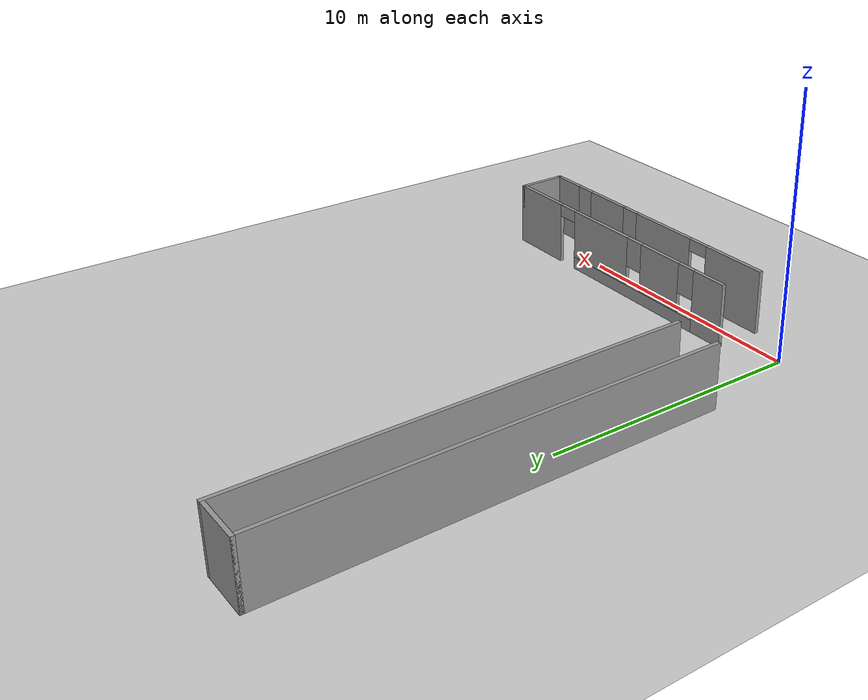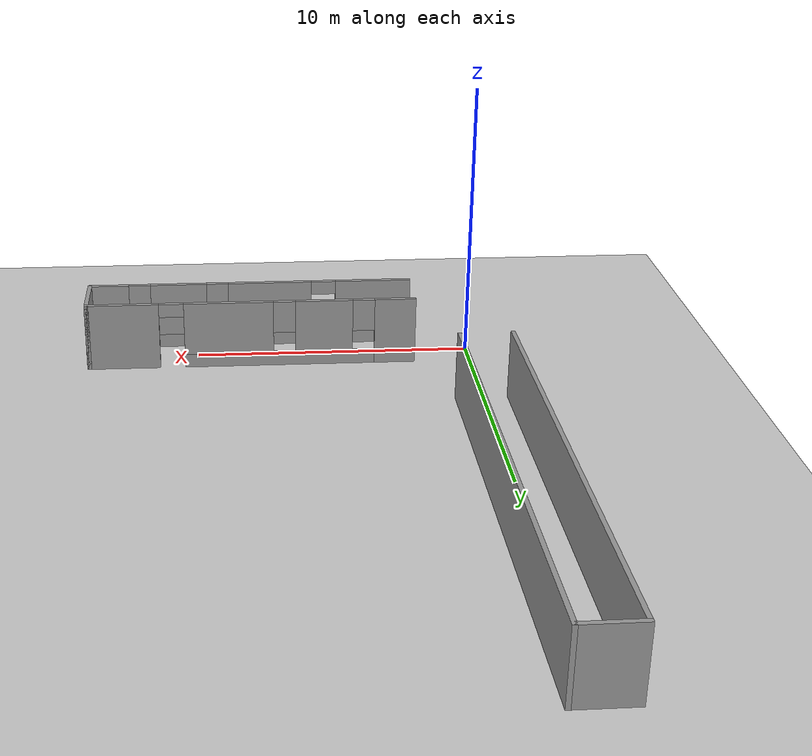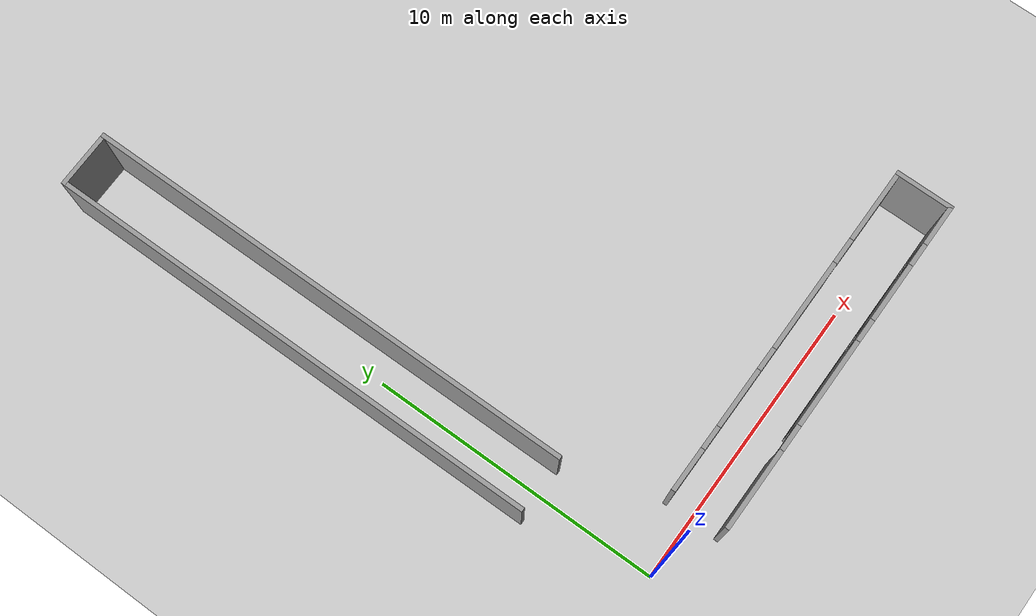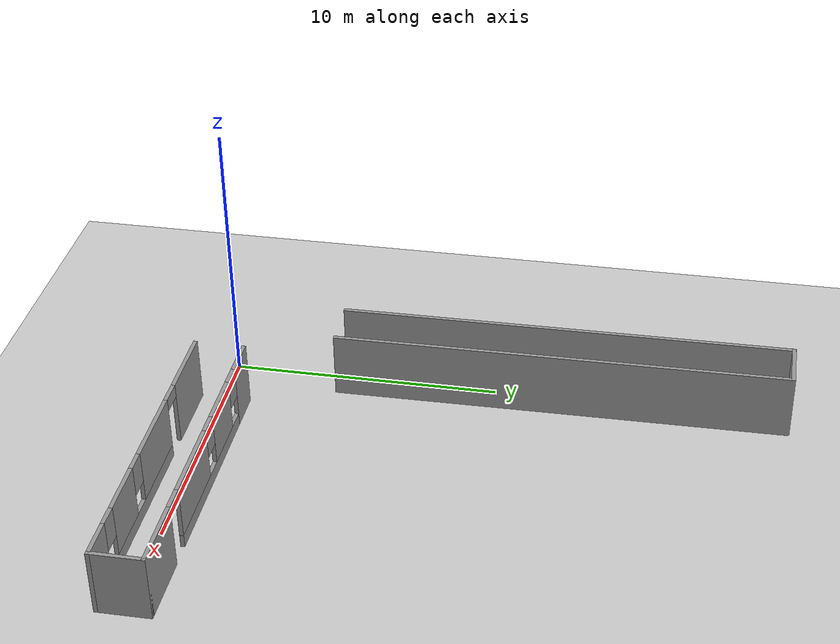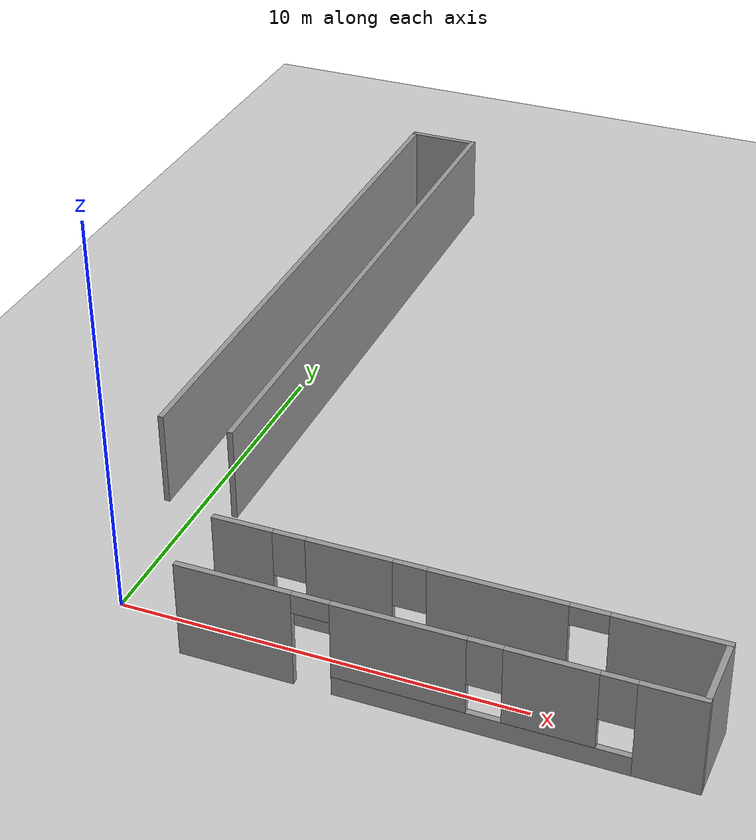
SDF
<sdf version="1.6">
 <world name="default">
  <light name="sun" type="directional">
   <pose>0 0 10 0 -0 0</pose>
   <diffuse>0.8 0.8 0.8 1</diffuse>
   <specular>0.2 0.2 0.2 1</specular>
   <attenuation>
    <range>1000</range>
    <constant>0.9</constant>
    <linear>0.01</linear>
    <quadratic>0.001</quadratic>
   </attenuation>
   <direction>-0.5 0.1 -0.9</direction>
  </light>
  <model name="ground_plane">
   <static>1</static>
   <link name="link">
    <collision name="collision">
     <geometry><plane><normal>0 0 1</normal><size>100 100</size></plane></geometry>
     <surface>
      <contact><collide_bitmask>65535</collide_bitmask></contact>
      <friction><ode><mu>100</mu><mu2>50</mu2></ode></friction>
     </surface>
    </collision>
    <visual name="visual">
     <cast_shadows>0</cast_shadows>
     <geometry><plane><normal>0 0 1</normal><size>100 100</size></plane></geometry>
     <material>
      <script><uri>file://media/materials/scripts/gazebo.material</uri><name>Gazebo/Grey</name></script>
     </material>
    </visual>
   </link>
  </model>
  <gravity>0 0 -9.8</gravity>
  <magnetic_field>6e-06 2.3e-05 -4.2e-05</magnetic_field>
  <atmosphere type="adiabatic"/>
  <physics name="default_physics" default="0" type="ode">
   <max_step_size>0.001</max_step_size>
   <real_time_factor>1</real_time_factor>
   <real_time_update_rate>1000</real_time_update_rate>
  </physics>
  <scene><ambient>0.4 0.4 0.4 1</ambient><background>0.7 0.7 0.7 1</background><shadows>1</shadows></scene>
  <spherical_coordinates>
   <surface_model>EARTH_WGS84</surface_model>
   <latitude_deg>0</latitude_deg>
   <longitude_deg>0</longitude_deg>
   <elevation>0</elevation>
   <heading_deg>0</heading_deg>
  </spherical_coordinates>
  <model name="corridor_window_door">
   <pose>8.04438 -0.018289 0 0 -0 0</pose>
   <link name="Wall_0">
    <pose>-0 0.925 0 0 -0 0</pose>
    <visual name="Wall_0_Visual_0">
     <pose>-5.2475 0 1.25 0 -0 0</pose>
     <geometry><box><size>1.505 0.15 2.5</size></box></geometry>
     <material>
      <script><uri>file://media/materials/scripts/gazebo.material</uri><name>Gazebo/Grey</name></script>
      <ambient>1 1 1 1</ambient>
     </material>
     <meta><layer>0</layer></meta>
    </visual>
    <collision name="Wall_0_Collision_0">
     <geometry><box><size>1.505 0.15 2.5</size></box></geometry>
     <pose>-5.2475 0 1.25 0 -0 0</pose>
    </collision>
    <visual name="Wall_0_Visual_1">
     <pose>4.6675 0 1.25 0 -0 0</pose>
     <geometry><box><size>2.665 0.15 2.5</size></box></geometry>
     <material>
      <script><uri>file://media/materials/scripts/gazebo.material</uri><name>Gazebo/Grey</name></script>
      <ambient>1 1 1 1</ambient>
     </material>
     <meta><layer>0</layer></meta>
    </visual>
    <collision name="Wall_0_Collision_1">
     <geometry><box><size>2.665 0.15 2.5</size></box></geometry>
     <pose>4.6675 0 1.25 0 -0 0</pose>
    </collision>
    <visual name="Wall_0_Visual_2">
     <pose>-1.03 0 0.25 0 -0 0</pose>
     <geometry><box><size>6.93 0.15 0.5</size></box></geometry>
     <material>
      <script><uri>file://media/materials/scripts/gazebo.material</uri><name>Gazebo/Grey</name></script>
      <ambient>1 1 1 1</ambient>
     </material>
     <meta><layer>0</layer></meta>
    </visual>
    <collision name="Wall_0_Collision_2">
     <geometry><box><size>6.93 0.15 0.5</size></box></geometry>
     <pose>-1.03 0 0.25 0 -0 0</pose>
    </collision>
    <visual name="Wall_0_Visual_3">
     <pose>-2.65 0 1.5 0 -0 0</pose>
     <geometry><box><size>2.09 0.15 2</size></box></geometry>
     <material>
      <script><uri>file://media/materials/scripts/gazebo.material</uri><name>Gazebo/Grey</name></script>
      <ambient>1 1 1 1</ambient>
     </material>
     <meta><layer>0</layer></meta>
    </visual>
    <collision name="Wall_0_Collision_3">
     <geometry><box><size>2.09 0.15 2</size></box></geometry>
     <pose>-2.65 0 1.5 0 -0 0</pose>
    </collision>
    <visual name="Wall_0_Visual_4">
     <pose>0.815 0 1.5 0 -0 0</pose>
     <geometry><box><size>3.24 0.15 2</size></box></geometry>
     <material>
      <script><uri>file://media/materials/scripts/gazebo.material</uri><name>Gazebo/Grey</name></script>
      <ambient>1 1 1 1</ambient>
     </material>
     <meta><layer>0</layer></meta>
    </visual>
    <collision name="Wall_0_Collision_4">
     <geometry><box><size>3.24 0.15 2</size></box></geometry>
     <pose>0.815 0 1.5 0 -0 0</pose>
    </collision>
    <visual name="Wall_0_Visual_5">
     <pose>-4.095 0 1.9 0 -0 0</pose>
     <geometry><box><size>0.8 0.15 1.2</size></box></geometry>
     <material>
      <script><uri>file://media/materials/scripts/gazebo.material</uri><name>Gazebo/Grey</name></script>
      <ambient>1 1 1 1</ambient>
     </material>
     <meta><layer>0</layer></meta>
    </visual>
    <collision name="Wall_0_Collision_5">
     <geometry><box><size>0.8 0.15 1.2</size></box></geometry>
     <pose>-4.095 0 1.9 0 -0 0</pose>
    </collision>
    <visual name="Wall_0_Visual_6">
     <pose>-1.205 0 1.9 0 -0 0</pose>
     <geometry><box><size>0.8 0.15 1.2</size></box></geometry>
     <material>
      <script><uri>file://media/materials/scripts/gazebo.material</uri><name>Gazebo/Grey</name></script>
      <ambient>1 1 1 1</ambient>
     </material>
     <meta><layer>0</layer></meta>
    </visual>
    <collision name="Wall_0_Collision_6">
     <geometry><box><size>0.8 0.15 1.2</size></box></geometry>
     <pose>-1.205 0 1.9 0 -0 0</pose>
    </collision>
    <visual name="Wall_0_Visual_7">
     <pose>2.885 0 2.25 0 -0 0</pose>
     <geometry><box><size>0.9 0.15 0.5</size></box></geometry>
     <material>
      <script><uri>file://media/materials/scripts/gazebo.material</uri><name>Gazebo/Grey</name></script>
      <ambient>1 1 1 1</ambient>
     </material>
     <meta><layer>0</layer></meta>
    </visual>
    <collision name="Wall_0_Collision_7">
     <geometry><box><size>0.9 0.15 0.5</size></box></geometry>
     <pose>2.885 0 2.25 0 -0 0</pose>
    </collision>
   </link>
   <link name="Wall_1">
    <collision name="Wall_1_Collision">
     <geometry><box><size>2 0.15 2.5</size></box></geometry>
     <pose>0 0 1.25 0 -0 0</pose>
    </collision>
    <visual name="Wall_1_Visual">
     <pose>0 0 1.25 0 -0 0</pose>
     <geometry><box><size>2 0.15 2.5</size></box></geometry>
     <material>
      <script><uri>file://media/materials/scripts/gazebo.material</uri><name>Gazebo/Grey</name></script>
      <ambient>1 1 1 1</ambient>
     </material>
     <meta><layer>0</layer></meta>
    </visual>
    <pose>5.925 -0 0 0 -0 -1.5708</pose>
   </link>
   <link name="Wall_2">
    <pose>-0 -0.925 0 0 -0 3.14159</pose>
    <visual name="Wall_2_Visual_0">
     <pose>-5.2475 0 1.25 0 -0 0</pose>
     <geometry><box><size>1.505 0.15 2.5</size></box></geometry>
     <material>
      <script><uri>file://media/materials/scripts/gazebo.material</uri><name>Gazebo/Grey</name></script>
      <ambient>1 1 1 1</ambient>
     </material>
     <meta><layer>0</layer></meta>
    </visual>
    <collision name="Wall_2_Collision_0">
     <geometry><box><size>1.505 0.15 2.5</size></box></geometry>
     <pose>-5.2475 0 1.25 0 -0 0</pose>
    </collision>
    <visual name="Wall_2_Visual_1">
     <pose>4.5975 0 1.25 0 -0 0</pose>
     <geometry><box><size>2.805 0.15 2.5</size></box></geometry>
     <material>
      <script><uri>file://media/materials/scripts/gazebo.material</uri><name>Gazebo/Grey</name></script>
      <ambient>1 1 1 1</ambient>
     </material>
     <meta><layer>0</layer></meta>
    </visual>
    <collision name="Wall_2_Collision_1">
     <geometry><box><size>2.805 0.15 2.5</size></box></geometry>
     <pose>4.5975 0 1.25 0 -0 0</pose>
    </collision>
    <visual name="Wall_2_Visual_2">
     <pose>-1.1 0 0.25 0 -0 0</pose>
     <geometry><box><size>6.79 0.15 0.5</size></box></geometry>
     <material>
      <script><uri>file://media/materials/scripts/gazebo.material</uri><name>Gazebo/Grey</name></script>
      <ambient>1 1 1 1</ambient>
     </material>
     <meta><layer>0</layer></meta>
    </visual>
    <collision name="Wall_2_Collision_2">
     <geometry><box><size>6.79 0.15 0.5</size></box></geometry>
     <pose>-1.1 0 0.25 0 -0 0</pose>
    </collision>
    <visual name="Wall_2_Visual_3">
     <pose>-2.655 0 1.5 0 -0 0</pose>
     <geometry><box><size>2.08 0.15 2</size></box></geometry>
     <material>
      <script><uri>file://media/materials/scripts/gazebo.material</uri><name>Gazebo/Grey</name></script>
      <ambient>1 1 1 1</ambient>
     </material>
     <meta><layer>0</layer></meta>
    </visual>
    <collision name="Wall_2_Collision_3">
     <geometry><box><size>2.08 0.15 2</size></box></geometry>
     <pose>-2.655 0 1.5 0 -0 0</pose>
    </collision>
    <visual name="Wall_2_Visual_4">
     <pose>0.74 0 1.5 0 -0 0</pose>
     <geometry><box><size>3.11 0.15 2</size></box></geometry>
     <material>
      <script><uri>file://media/materials/scripts/gazebo.material</uri><name>Gazebo/Grey</name></script>
      <ambient>1 1 1 1</ambient>
     </material>
     <meta><layer>0</layer></meta>
    </visual>
    <collision name="Wall_2_Collision_4">
     <geometry><box><size>3.11 0.15 2</size></box></geometry>
     <pose>0.74 0 1.5 0 -0 0</pose>
    </collision>
    <visual name="Wall_2_Visual_5">
     <pose>-4.095 0 1.9 0 -0 0</pose>
     <geometry><box><size>0.8 0.15 1.2</size></box></geometry>
     <material>
      <script><uri>file://media/materials/scripts/gazebo.material</uri><name>Gazebo/Grey</name></script>
      <ambient>1 1 1 1</ambient>
     </material>
     <meta><layer>0</layer></meta>
    </visual>
    <collision name="Wall_2_Collision_5">
     <geometry><box><size>0.8 0.15 1.2</size></box></geometry>
     <pose>-4.095 0 1.9 0 -0 0</pose>
    </collision>
    <visual name="Wall_2_Visual_6">
     <pose>-1.215 0 1.9 0 -0 0</pose>
     <geometry><box><size>0.8 0.15 1.2</size></box></geometry>
     <material>
      <script><uri>file://media/materials/scripts/gazebo.material</uri><name>Gazebo/Grey</name></script>
      <ambient>1 1 1 1</ambient>
     </material>
     <meta><layer>0</layer></meta>
    </visual>
    <collision name="Wall_2_Collision_6">
     <geometry><box><size>0.8 0.15 1.2</size></box></geometry>
     <pose>-1.215 0 1.9 0 -0 0</pose>
    </collision>
    <visual name="Wall_2_Visual_7">
     <pose>2.745 0 2.25 0 -0 0</pose>
     <geometry><box><size>0.9 0.15 0.5</size></box></geometry>
     <material>
      <script><uri>file://media/materials/scripts/gazebo.material</uri><name>Gazebo/Grey</name></script>
      <ambient>1 1 1 1</ambient>
     </material>
     <meta><layer>0</layer></meta>
    </visual>
    <collision name="Wall_2_Collision_7">
     <geometry><box><size>0.9 0.15 0.5</size></box></geometry>
     <pose>2.745 0 2.25 0 -0 0</pose>
    </collision>
   </link>
   <static>1</static>
  </model>
  <model name="carridor">
   <pose>-0.061518 12.532 0 0 -0 1.57828</pose>
   <link name="Wall_4">
    <collision name="Wall_4_Collision">
     <geometry><box><size>17 0.15 2.5</size></box></geometry>
     <pose>0 0 1.25 0 -0 0</pose>
    </collision>
    <visual name="Wall_4_Visual">
     <pose>0 0 1.25 0 -0 0</pose>
     <geometry><box><size>17 0.15 2.5</size></box></geometry>
     <material>
      <script><uri>file://media/materials/scripts/gazebo.material</uri><name>Gazebo/Grey</name></script>
      <ambient>1 1 1 1</ambient>
     </material>
     <meta><layer>0</layer></meta>
    </visual>
    <pose>-0 0.925 0 0 -0 0</pose>
   </link>
   <link name="Wall_5">
    <collision name="Wall_5_Collision">
     <geometry><box><size>2 0.15 2.5</size></box></geometry>
     <pose>0 0 1.25 0 -0 0</pose>
    </collision>
    <visual name="Wall_5_Visual">
     <pose>0 0 1.25 0 -0 0</pose>
     <geometry><box><size>2 0.15 2.5</size></box></geometry>
     <material>
      <script><uri>file://media/materials/scripts/gazebo.material</uri><name>Gazebo/Grey</name></script>
      <ambient>1 1 1 1</ambient>
     </material>
     <meta><layer>0</layer></meta>
    </visual>
    <pose>8.425 -0 0 0 -0 -1.5708</pose>
   </link>
   <link name="Wall_6">
    <collision name="Wall_6_Collision">
     <geometry><box><size>17 0.15 2.5</size></box></geometry>
     <pose>0 0 1.25 0 -0 0</pose>
    </collision>
    <visual name="Wall_6_Visual">
     <pose>0 0 1.25 0 -0 0</pose>
     <geometry><box><size>17 0.15 2.5</size></box></geometry>
     <material>
      <script><uri>file://media/materials/scripts/gazebo.material</uri><name>Gazebo/Grey</name></script>
      <ambient>1 1 1 1</ambient>
     </material>
     <meta><layer>0</layer></meta>
    </visual>
    <pose>-0 -0.925 0 0 -0 3.14159</pose>
   </link>
   <static>1</static>
  </model>
 </world>
</sdf>
